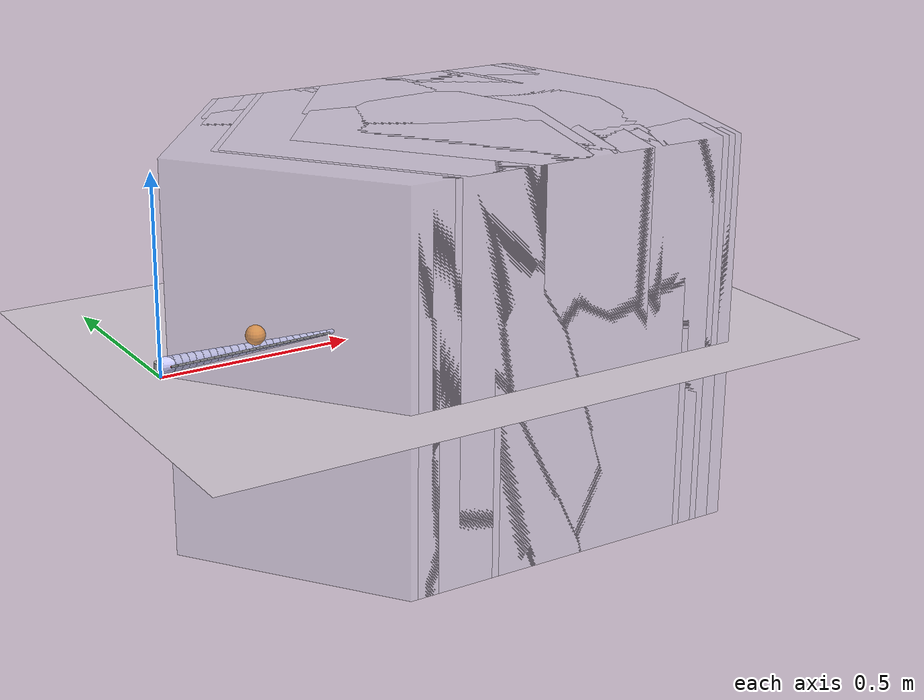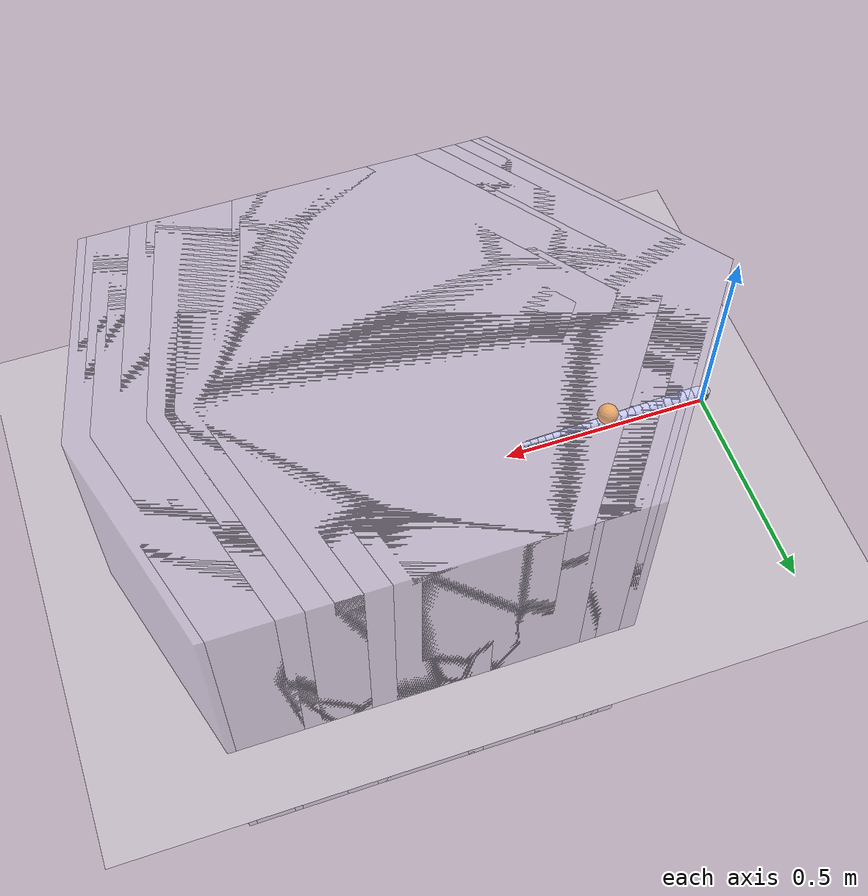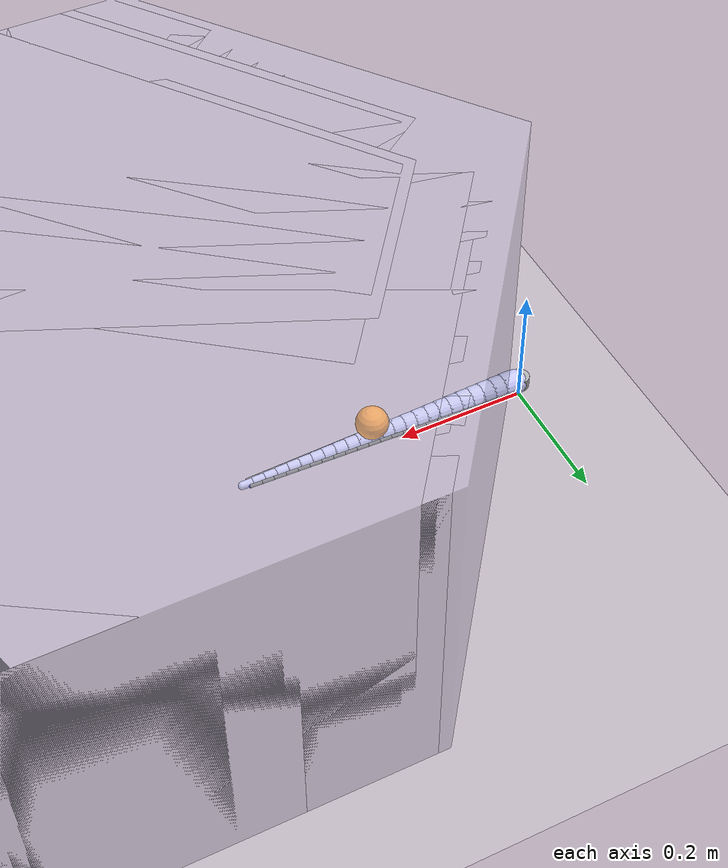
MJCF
<?xml version="1.0" encoding="utf-8"?>
<mujoco model="SpiRob_2T">
  <compiler angle="degree" coordinate="local"/>
  <option gravity="0 0 -9.81" timestep="0.002"/>
  <default>
    <joint armature="0.01" damping="0.2" limited="true" range="-45 45"/>
    <geom density="900" friction="0.8 0.1 0.1" margin="0.002" condim="3"/>
  </default>
  <asset>
    <!-- визуальная сетка звена; если файла нет, можно удалить этот mesh -->
    <mesh name="hex_link" file="hex_base.obj"/>
  </asset>
  <worldbody>
    <body name="ground" pos="0 0 0">
      <geom name="floor" type="plane" size="2 2 0.02" rgba="0.9 0.9 0.9 1"/>
    </body>
    <body name="base" pos="0 0 0.03">
      <geom type="cylinder" size="0.015 0.01" rgba="0.7 0.7 0.7 1"/>
      <body name="link_0" pos="0.01875 0 0">
        <joint name="joint_0" type="hinge" axis="0 1 0"/>
        <geom type="capsule" fromto="-0.00937 0 0 0.00937 0 0" size="0.02000" rgba="0.8 0.8 1 1"/>
        <geom type="mesh" mesh="hex_link" rgba="0.8 0.8 0.9 0.3" scale="0.01875 0.04000 0.04000"/>
        <site name="s_left_0"  pos="0 0.02000 0" size="0.002" rgba="0 0 1 1"/>
        <site name="s_right_0" pos="0 -0.02000 0" size="0.002" rgba="1 0 0 1"/>
        <body name="link_1" pos="0.01875 0 0">
          <joint name="joint_1" type="hinge" axis="0 1 0"/>
          <geom type="capsule" fromto="-0.00937 0 0 0.00937 0 0" size="0.01939" rgba="0.8 0.8 1 1"/>
          <geom type="mesh" mesh="hex_link" rgba="0.8 0.8 0.9 0.3" scale="0.01875 0.03878 0.03878"/>
          <site name="s_left_1"  pos="0 0.01939 0" size="0.002" rgba="0 0 1 1"/>
          <site name="s_right_1" pos="0 -0.01939 0" size="0.002" rgba="1 0 0 1"/>
          <body name="link_2" pos="0.01875 0 0">
            <joint name="joint_2" type="hinge" axis="0 1 0"/>
            <geom type="capsule" fromto="-0.00937 0 0 0.00937 0 0" size="0.01878" rgba="0.8 0.8 1 1"/>
            <geom type="mesh" mesh="hex_link" rgba="0.8 0.8 0.9 0.3" scale="0.01875 0.03757 0.03757"/>
            <site name="s_left_2"  pos="0 0.01878 0" size="0.002" rgba="0 0 1 1"/>
            <site name="s_right_2" pos="0 -0.01878 0" size="0.002" rgba="1 0 0 1"/>
            <body name="link_3" pos="0.01875 0 0">
              <joint name="joint_3" type="hinge" axis="0 1 0"/>
              <geom type="capsule" fromto="-0.00937 0 0 0.00937 0 0" size="0.01817" rgba="0.8 0.8 1 1"/>
              <geom type="mesh" mesh="hex_link" rgba="0.8 0.8 0.9 0.3" scale="0.01875 0.03635 0.03635"/>
              <site name="s_left_3"  pos="0 0.01817 0" size="0.002" rgba="0 0 1 1"/>
              <site name="s_right_3" pos="0 -0.01817 0" size="0.002" rgba="1 0 0 1"/>
              <body name="link_4" pos="0.01875 0 0">
                <joint name="joint_4" type="hinge" axis="0 1 0"/>
                <geom type="capsule" fromto="-0.00937 0 0 0.00937 0 0" size="0.01757" rgba="0.8 0.8 1 1"/>
                <geom type="mesh" mesh="hex_link" rgba="0.8 0.8 0.9 0.3" scale="0.01875 0.03513 0.03513"/>
                <site name="s_left_4"  pos="0 0.01757 0" size="0.002" rgba="0 0 1 1"/>
                <site name="s_right_4" pos="0 -0.01757 0" size="0.002" rgba="1 0 0 1"/>
                <body name="link_5" pos="0.01875 0 0">
                  <joint name="joint_5" type="hinge" axis="0 1 0"/>
                  <geom type="capsule" fromto="-0.00937 0 0 0.00937 0 0" size="0.01696" rgba="0.8 0.8 1 1"/>
                  <geom type="mesh" mesh="hex_link" rgba="0.8 0.8 0.9 0.3" scale="0.01875 0.03391 0.03391"/>
                  <site name="s_left_5"  pos="0 0.01696 0" size="0.002" rgba="0 0 1 1"/>
                  <site name="s_right_5" pos="0 -0.01696 0" size="0.002" rgba="1 0 0 1"/>
                  <body name="link_6" pos="0.01875 0 0">
                    <joint name="joint_6" type="hinge" axis="0 1 0"/>
                    <geom type="capsule" fromto="-0.00937 0 0 0.00937 0 0" size="0.01635" rgba="0.8 0.8 1 1"/>
                    <geom type="mesh" mesh="hex_link" rgba="0.8 0.8 0.9 0.3" scale="0.01875 0.03270 0.03270"/>
                    <site name="s_left_6"  pos="0 0.01635 0" size="0.002" rgba="0 0 1 1"/>
                    <site name="s_right_6" pos="0 -0.01635 0" size="0.002" rgba="1 0 0 1"/>
                    <body name="link_7" pos="0.01875 0 0">
                      <joint name="joint_7" type="hinge" axis="0 1 0"/>
                      <geom type="capsule" fromto="-0.00937 0 0 0.00937 0 0" size="0.01574" rgba="0.8 0.8 1 1"/>
                      <geom type="mesh" mesh="hex_link" rgba="0.8 0.8 0.9 0.3" scale="0.01875 0.03148 0.03148"/>
                      <site name="s_left_7"  pos="0 0.01574 0" size="0.002" rgba="0 0 1 1"/>
                      <site name="s_right_7" pos="0 -0.01574 0" size="0.002" rgba="1 0 0 1"/>
                      <body name="link_8" pos="0.01875 0 0">
                        <joint name="joint_8" type="hinge" axis="0 1 0"/>
                        <geom type="capsule" fromto="-0.00937 0 0 0.00937 0 0" size="0.01513" rgba="0.8 0.8 1 1"/>
                        <geom type="mesh" mesh="hex_link" rgba="0.8 0.8 0.9 0.3" scale="0.01875 0.03026 0.03026"/>
                        <site name="s_left_8"  pos="0 0.01513 0" size="0.002" rgba="0 0 1 1"/>
                        <site name="s_right_8" pos="0 -0.01513 0" size="0.002" rgba="1 0 0 1"/>
                        <body name="link_9" pos="0.01875 0 0">
                          <joint name="joint_9" type="hinge" axis="0 1 0"/>
                          <geom type="capsule" fromto="-0.00937 0 0 0.00937 0 0" size="0.01452" rgba="0.8 0.8 1 1"/>
                          <geom type="mesh" mesh="hex_link" rgba="0.8 0.8 0.9 0.3" scale="0.01875 0.02904 0.02904"/>
                          <site name="s_left_9"  pos="0 0.01452 0" size="0.002" rgba="0 0 1 1"/>
                          <site name="s_right_9" pos="0 -0.01452 0" size="0.002" rgba="1 0 0 1"/>
                          <body name="link_10" pos="0.01875 0 0">
                            <joint name="joint_10" type="hinge" axis="0 1 0"/>
                            <geom type="capsule" fromto="-0.00937 0 0 0.00937 0 0" size="0.01391" rgba="0.8 0.8 1 1"/>
                            <geom type="mesh" mesh="hex_link" rgba="0.8 0.8 0.9 0.3" scale="0.01875 0.02783 0.02783"/>
                            <site name="s_left_10"  pos="0 0.01391 0" size="0.002" rgba="0 0 1 1"/>
                            <site name="s_right_10" pos="0 -0.01391 0" size="0.002" rgba="1 0 0 1"/>
                            <body name="link_11" pos="0.01875 0 0">
                              <joint name="joint_11" type="hinge" axis="0 1 0"/>
                              <geom type="capsule" fromto="-0.00937 0 0 0.00937 0 0" size="0.01330" rgba="0.8 0.8 1 1"/>
                              <geom type="mesh" mesh="hex_link" rgba="0.8 0.8 0.9 0.3" scale="0.01875 0.02661 0.02661"/>
                              <site name="s_left_11"  pos="0 0.01330 0" size="0.002" rgba="0 0 1 1"/>
                              <site name="s_right_11" pos="0 -0.01330 0" size="0.002" rgba="1 0 0 1"/>
                              <body name="link_12" pos="0.01875 0 0">
                                <joint name="joint_12" type="hinge" axis="0 1 0"/>
                                <geom type="capsule" fromto="-0.00937 0 0 0.00937 0 0" size="0.01270" rgba="0.8 0.8 1 1"/>
                                <geom type="mesh" mesh="hex_link" rgba="0.8 0.8 0.9 0.3" scale="0.01875 0.02539 0.02539"/>
                                <site name="s_left_12"  pos="0 0.01270 0" size="0.002" rgba="0 0 1 1"/>
                                <site name="s_right_12" pos="0 -0.01270 0" size="0.002" rgba="1 0 0 1"/>
                                <body name="link_13" pos="0.01875 0 0">
                                  <joint name="joint_13" type="hinge" axis="0 1 0"/>
                                  <geom type="capsule" fromto="-0.00937 0 0 0.00937 0 0" size="0.01209" rgba="0.8 0.8 1 1"/>
                                  <geom type="mesh" mesh="hex_link" rgba="0.8 0.8 0.9 0.3" scale="0.01875 0.02417 0.02417"/>
                                  <site name="s_left_13"  pos="0 0.01209 0" size="0.002" rgba="0 0 1 1"/>
                                  <site name="s_right_13" pos="0 -0.01209 0" size="0.002" rgba="1 0 0 1"/>
                                  <body name="link_14" pos="0.01875 0 0">
                                    <joint name="joint_14" type="hinge" axis="0 1 0"/>
                                    <geom type="capsule" fromto="-0.00937 0 0 0.00937 0 0" size="0.01148" rgba="0.8 0.8 1 1"/>
                                    <geom type="mesh" mesh="hex_link" rgba="0.8 0.8 0.9 0.3" scale="0.01875 0.02296 0.02296"/>
                                    <site name="s_left_14"  pos="0 0.01148 0" size="0.002" rgba="0 0 1 1"/>
                                    <site name="s_right_14" pos="0 -0.01148 0" size="0.002" rgba="1 0 0 1"/>
                                    <body name="link_15" pos="0.01875 0 0">
                                      <joint name="joint_15" type="hinge" axis="0 1 0"/>
                                      <geom type="capsule" fromto="-0.00937 0 0 0.00937 0 0" size="0.01087" rgba="0.8 0.8 1 1"/>
                                      <geom type="mesh" mesh="hex_link" rgba="0.8 0.8 0.9 0.3" scale="0.01875 0.02174 0.02174"/>
                                      <site name="s_left_15"  pos="0 0.01087 0" size="0.002" rgba="0 0 1 1"/>
                                      <site name="s_right_15" pos="0 -0.01087 0" size="0.002" rgba="1 0 0 1"/>
                                      <body name="link_16" pos="0.01875 0 0">
                                        <joint name="joint_16" type="hinge" axis="0 1 0"/>
                                        <geom type="capsule" fromto="-0.00937 0 0 0.00937 0 0" size="0.01026" rgba="0.8 0.8 1 1"/>
                                        <geom type="mesh" mesh="hex_link" rgba="0.8 0.8 0.9 0.3" scale="0.01875 0.02052 0.02052"/>
                                        <site name="s_left_16"  pos="0 0.01026 0" size="0.002" rgba="0 0 1 1"/>
                                        <site name="s_right_16" pos="0 -0.01026 0" size="0.002" rgba="1 0 0 1"/>
                                        <body name="link_17" pos="0.01875 0 0">
                                          <joint name="joint_17" type="hinge" axis="0 1 0"/>
                                          <geom type="capsule" fromto="-0.00937 0 0 0.00937 0 0" size="0.00965" rgba="0.8 0.8 1 1"/>
                                          <geom type="mesh" mesh="hex_link" rgba="0.8 0.8 0.9 0.3" scale="0.01875 0.01930 0.01930"/>
                                          <site name="s_left_17"  pos="0 0.00965 0" size="0.002" rgba="0 0 1 1"/>
                                          <site name="s_right_17" pos="0 -0.00965 0" size="0.002" rgba="1 0 0 1"/>
                                          <body name="link_18" pos="0.01875 0 0">
                                            <joint name="joint_18" type="hinge" axis="0 1 0"/>
                                            <geom type="capsule" fromto="-0.00937 0 0 0.00937 0 0" size="0.00904" rgba="0.8 0.8 1 1"/>
                                            <geom type="mesh" mesh="hex_link" rgba="0.8 0.8 0.9 0.3" scale="0.01875 0.01809 0.01809"/>
                                            <site name="s_left_18"  pos="0 0.00904 0" size="0.002" rgba="0 0 1 1"/>
                                            <site name="s_right_18" pos="0 -0.00904 0" size="0.002" rgba="1 0 0 1"/>
                                            <body name="link_19" pos="0.01875 0 0">
                                              <joint name="joint_19" type="hinge" axis="0 1 0"/>
                                              <geom type="capsule" fromto="-0.00937 0 0 0.00937 0 0" size="0.00843" rgba="0.8 0.8 1 1"/>
                                              <geom type="mesh" mesh="hex_link" rgba="0.8 0.8 0.9 0.3" scale="0.01875 0.01687 0.01687"/>
                                              <site name="s_left_19"  pos="0 0.00843 0" size="0.002" rgba="0 0 1 1"/>
                                              <site name="s_right_19" pos="0 -0.00843 0" size="0.002" rgba="1 0 0 1"/>
                                              <body name="link_20" pos="0.01875 0 0">
                                                <joint name="joint_20" type="hinge" axis="0 1 0"/>
                                                <geom type="capsule" fromto="-0.00937 0 0 0.00937 0 0" size="0.00783" rgba="0.8 0.8 1 1"/>
                                                <geom type="mesh" mesh="hex_link" rgba="0.8 0.8 0.9 0.3" scale="0.01875 0.01565 0.01565"/>
                                                <site name="s_left_20"  pos="0 0.00783 0" size="0.002" rgba="0 0 1 1"/>
                                                <site name="s_right_20" pos="0 -0.00783 0" size="0.002" rgba="1 0 0 1"/>
                                                <body name="link_21" pos="0.01875 0 0">
                                                  <joint name="joint_21" type="hinge" axis="0 1 0"/>
                                                  <geom type="capsule" fromto="-0.00937 0 0 0.00937 0 0" size="0.00722" rgba="0.8 0.8 1 1"/>
                                                  <geom type="mesh" mesh="hex_link" rgba="0.8 0.8 0.9 0.3" scale="0.01875 0.01443 0.01443"/>
                                                  <site name="s_left_21"  pos="0 0.00722 0" size="0.002" rgba="0 0 1 1"/>
                                                  <site name="s_right_21" pos="0 -0.00722 0" size="0.002" rgba="1 0 0 1"/>
                                                  <body name="link_22" pos="0.01875 0 0">
                                                    <joint name="joint_22" type="hinge" axis="0 1 0"/>
                                                    <geom type="capsule" fromto="-0.00937 0 0 0.00937 0 0" size="0.00661" rgba="0.8 0.8 1 1"/>
                                                    <geom type="mesh" mesh="hex_link" rgba="0.8 0.8 0.9 0.3" scale="0.01875 0.01322 0.01322"/>
                                                    <site name="s_left_22"  pos="0 0.00661 0" size="0.002" rgba="0 0 1 1"/>
                                                    <site name="s_right_22" pos="0 -0.00661 0" size="0.002" rgba="1 0 0 1"/>
                                                    <body name="link_23" pos="0.01875 0 0">
                                                      <joint name="joint_23" type="hinge" axis="0 1 0"/>
                                                      <geom type="capsule" fromto="-0.00937 0 0 0.00937 0 0" size="0.00600" rgba="0.8 0.8 1 1"/>
                                                      <geom type="mesh" mesh="hex_link" rgba="0.8 0.8 0.9 0.3" scale="0.01875 0.01200 0.01200"/>
                                                      <site name="s_left_23"  pos="0 0.00600 0" size="0.002" rgba="0 0 1 1"/>
                                                      <site name="s_right_23" pos="0 -0.00600 0" size="0.002" rgba="1 0 0 1"/>
                                                    </body>
                                                  </body>
                                                </body>
                                              </body>
                                            </body>
                                          </body>
                                        </body>
                                      </body>
                                    </body>
                                  </body>
                                </body>
                              </body>
                            </body>
                          </body>
                        </body>
                      </body>
                    </body>
                  </body>
                </body>
              </body>
            </body>
          </body>
        </body>
      </body>
    </body>  <!-- base -->
    <body name="obj_sphere_hi" pos="0.25 0 0.06">
      <freejoint name="obj_sphere_hi_free"/>
      <geom name="obj_sphere_hi_geom" type="sphere" size="0.025" density="500" rgba="1 0.6 0.2 1"/>
    </body>
  </worldbody>
  <tendon>
    <spatial name="tendon_left">
      <site site="s_left_0"/>
      <site site="s_left_1"/>
      <site site="s_left_2"/>
      <site site="s_left_3"/>
      <site site="s_left_4"/>
      <site site="s_left_5"/>
      <site site="s_left_6"/>
      <site site="s_left_7"/>
      <site site="s_left_8"/>
      <site site="s_left_9"/>
      <site site="s_left_10"/>
      <site site="s_left_11"/>
      <site site="s_left_12"/>
      <site site="s_left_13"/>
      <site site="s_left_14"/>
      <site site="s_left_15"/>
      <site site="s_left_16"/>
      <site site="s_left_17"/>
      <site site="s_left_18"/>
      <site site="s_left_19"/>
      <site site="s_left_20"/>
      <site site="s_left_21"/>
      <site site="s_left_22"/>
      <site site="s_left_23"/>
    </spatial>
    <spatial name="tendon_right">
      <site site="s_right_0"/>
      <site site="s_right_1"/>
      <site site="s_right_2"/>
      <site site="s_right_3"/>
      <site site="s_right_4"/>
      <site site="s_right_5"/>
      <site site="s_right_6"/>
      <site site="s_right_7"/>
      <site site="s_right_8"/>
      <site site="s_right_9"/>
      <site site="s_right_10"/>
      <site site="s_right_11"/>
      <site site="s_right_12"/>
      <site site="s_right_13"/>
      <site site="s_right_14"/>
      <site site="s_right_15"/>
      <site site="s_right_16"/>
      <site site="s_right_17"/>
      <site site="s_right_18"/>
      <site site="s_right_19"/>
      <site site="s_right_20"/>
      <site site="s_right_21"/>
      <site site="s_right_22"/>
      <site site="s_right_23"/>
    </spatial>
  </tendon>
  <actuator>
    <motor name="motor_left"  tendon="tendon_left"  gear="40"/>
    <motor name="motor_right" tendon="tendon_right" gear="40"/>
  </actuator>
</mujoco>
